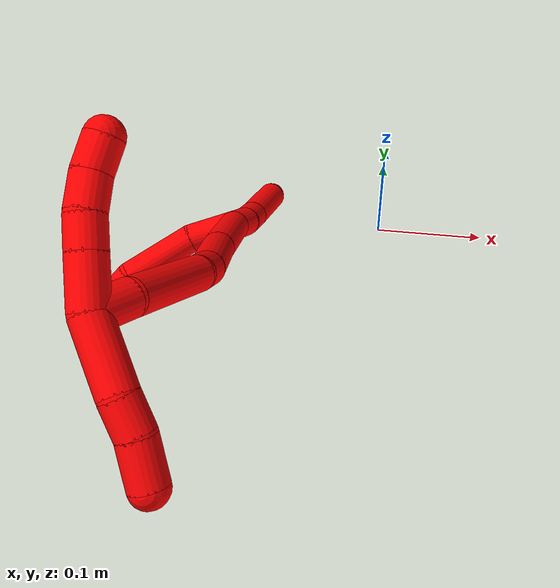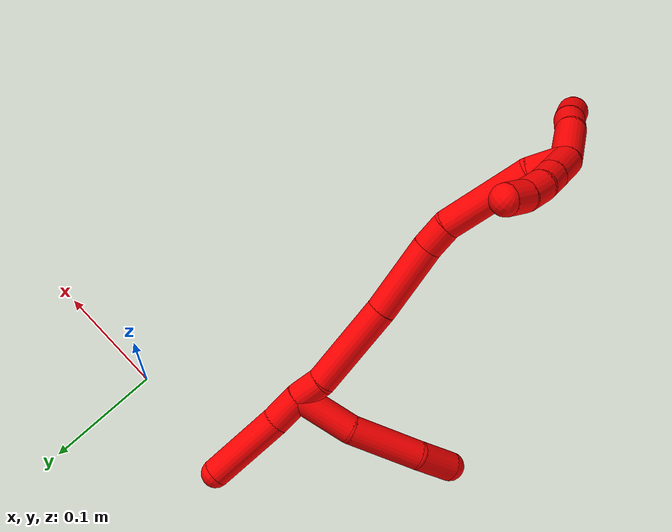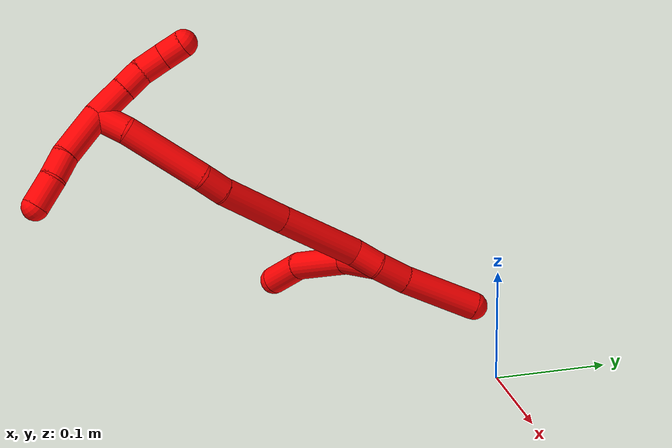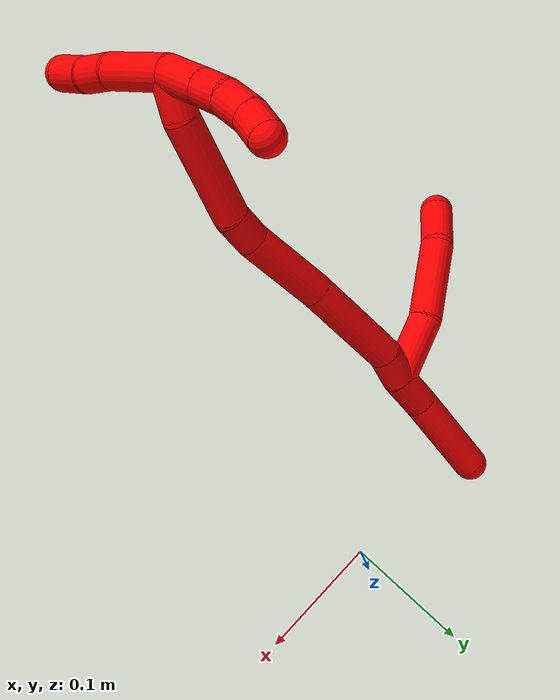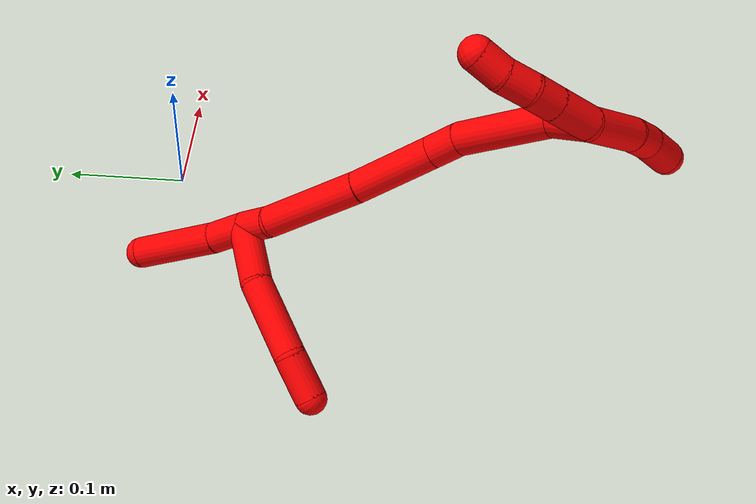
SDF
<sdf version="1.7">
 <world name="default">
  <model name="photoneo_s_sensor">
   <static>1</static>
   <pose>0 0 2 1.57079 1.57079 3.14159</pose>
   <link name="link">
    <inertial><mass>0.1</mass></inertial>
    <sensor name="sensor" type="depth">
     <update_rate>30</update_rate>
     <camera>
      <horizontal_fov>1.22</horizontal_fov>
      <image><width>1920</width><height>1200</height><format>B8G8R8</format></image>
      <clip><near>0.1</near><far>4</far></clip>
      <depth_camera><output>points</output></depth_camera>
     </camera>
     <plugin name="camera_plugin" filename="libgazebo_ros_depth_camera.so">
      <baseline>0.2</baseline>
      <alwaysOn>1</alwaysOn>
      <updateRate>0.0</updateRate>
      <cameraName>camera_ir</cameraName>
      <imageTopicName>/camera/color/image_raw</imageTopicName>
      <cameraInfoTopicName>/camera/color/camera_info</cameraInfoTopicName>
      <depthImageTopicName>/camera/depth/image_raw</depthImageTopicName>
      <depthImageCameraInfoTopicName>/camera/depth/camera_info</depthImageCameraInfoTopicName>
      <pointCloudTopicName>/camera/depth/points</pointCloudTopicName>
      <frameName>fr_optical</frameName>
      <pointCloudCutoff>0.1</pointCloudCutoff>
      <pointCloudCutoffMax>2.0</pointCloudCutoffMax>
      <distortionK1>0</distortionK1>
      <distortionK2>0</distortionK2>
      <distortionK3>0</distortionK3>
      <distortionT1>0</distortionT1>
      <distortionT2>0</distortionT2>
      <CxPrime>0</CxPrime>
      <Cx>0</Cx>
      <Cy>0</Cy>
      <focalLength>0</focalLength>
      <hackBaseline>0</hackBaseline>
     </plugin>
    </sensor>
   </link>
  </model>
  <model name="bin">
   <static>1</static>
   <link name="bottom">
    <collision name="collision-bottom">
     <pose>0 0 -0.01 0 -0 0</pose>
     <geometry><box><size>0.8 0.6 0.02</size></box></geometry>
     <surface>
      <friction><ode><mu>100</mu><mu2>100</mu2></ode></friction>
      <contact><collide_bitmask>65535</collide_bitmask></contact>
     </surface>
    </collision>
   </link>
   <link name="west_wall">
    <collision name="collision-west_wall">
     <pose>-0.41 0 0.1 0 -0 0</pose>
     <geometry><box><size>0.02 0.6 0.2</size></box></geometry>
     <surface>
      <friction><ode><mu>100</mu><mu2>100</mu2></ode></friction>
      <contact><collide_bitmask>65535</collide_bitmask></contact>
     </surface>
    </collision>
   </link>
   <link name="east_wall">
    <collision name="collision-east_wall">
     <pose>0.41 0 0.1 0 -0 0</pose>
     <geometry><box><size>0.02 0.6 0.2</size></box></geometry>
     <surface>
      <friction><ode><mu>100</mu><mu2>100</mu2></ode></friction>
      <contact><collide_bitmask>65535</collide_bitmask></contact>
     </surface>
    </collision>
   </link>
   <link name="south_wall">
    <collision name="collision-south_wall">
     <pose>0 -0.31 0.1 0 -0 0</pose>
     <geometry><box><size>0.8 0.02 0.2</size></box></geometry>
     <surface>
      <friction><ode><mu>100</mu><mu2>100</mu2></ode></friction>
      <contact><collide_bitmask>65535</collide_bitmask></contact>
     </surface>
    </collision>
   </link>
   <link name="north_wall">
    <collision name="collision-north_wall">
     <pose>0 0.31 0.1 0 -0 0</pose>
     <geometry><box><size>0.8 0.02 0.2</size></box></geometry>
     <surface>
      <friction><ode><mu>100</mu><mu2>100</mu2></ode></friction>
      <contact><collide_bitmask>65535</collide_bitmask></contact>
     </surface>
    </collision>
   </link>
  </model>
  <model name="2">
   <static>0</static>
   <link name="2">
    <collision name="collision-cylinder-e_1_2_8">
     <pose>-0.019446 0.015997 0.002731 -1.40171 -0.875347 0.752079</pose>
     <geometry><cylinder><radius>0.0125</radius><length>0.050657</length></cylinder></geometry>
     <surface>
      <friction><ode><mu>1.16</mu><mu2>1.16</mu2><slip1>0</slip1><slip2>0</slip2></ode></friction>
      <contact><ode><kp>1e+06</kp><kd>1</kd><max_vel>0</max_vel><min_depth>0.001</min_depth></ode></contact>
     </surface>
    </collision>
    <visual name="visual-cylinder-e_1_2_8">
     <pose>-0.019446 0.015997 0.002731 -1.40171 -0.875347 0.752079</pose>
     <geometry><cylinder><radius>0.0125</radius><length>0.050657</length></cylinder></geometry>
     <material><ambient>1 0 0 1</ambient></material>
    </visual>
    <collision name="collision-cylinder-e_2_8_9">
     <pose>-0.067448 0.045038 0.009853 -1.24606 -1.12168 0.847872</pose>
     <geometry><cylinder><radius>0.0125</radius><length>0.063398</length></cylinder></geometry>
     <surface>
      <friction><ode><mu>1.16</mu><mu2>1.16</mu2><slip1>0</slip1><slip2>0</slip2></ode></friction>
      <contact><ode><kp>1e+06</kp><kd>1</kd><max_vel>0</max_vel><min_depth>0.001</min_depth></ode></contact>
     </surface>
    </collision>
    <visual name="visual-cylinder-e_2_8_9">
     <pose>-0.067448 0.045038 0.009853 -1.24606 -1.12168 0.847872</pose>
     <geometry><cylinder><radius>0.0125</radius><length>0.063398</length></cylinder></geometry>
     <material><ambient>1 0 0 1</ambient></material>
    </visual>
    <collision name="collision-cylinder-e_3_9_6">
     <pose>-0.113618 0.061517 0.013278 -1.8449 -1.37092 1.6471</pose>
     <geometry><cylinder><radius>0.0125</radius><length>0.035945</length></cylinder></geometry>
     <surface>
      <friction><ode><mu>1.16</mu><mu2>1.16</mu2><slip1>0</slip1><slip2>0</slip2></ode></friction>
      <contact><ode><kp>1e+06</kp><kd>1</kd><max_vel>0</max_vel><min_depth>0.001</min_depth></ode></contact>
     </surface>
    </collision>
    <visual name="visual-cylinder-e_3_9_6">
     <pose>-0.113618 0.061517 0.013278 -1.8449 -1.37092 1.6471</pose>
     <geometry><cylinder><radius>0.0125</radius><length>0.035945</length></cylinder></geometry>
     <material><ambient>1 0 0 1</ambient></material>
    </visual>
    <collision name="collision-cylinder-e_1_2_10">
     <pose>0.003432 0.002529 -0.014256 -2.96601 0.232712 -1.85071</pose>
     <geometry><cylinder><radius>0.0125</radius><length>0.029759</length></cylinder></geometry>
     <surface>
      <friction><ode><mu>1.16</mu><mu2>1.16</mu2><slip1>0</slip1><slip2>0</slip2></ode></friction>
      <contact><ode><kp>1e+06</kp><kd>1</kd><max_vel>0</max_vel><min_depth>0.001</min_depth></ode></contact>
     </surface>
    </collision>
    <visual name="visual-cylinder-e_1_2_10">
     <pose>0.003432 0.002529 -0.014256 -2.96601 0.232712 -1.85071</pose>
     <geometry><cylinder><radius>0.0125</radius><length>0.029759</length></cylinder></geometry>
     <material><ambient>1 0 0 1</ambient></material>
    </visual>
    <collision name="collision-cylinder-e_2_10_5">
     <pose>0.018739 0.011012 -0.061023 -2.96048 0.344938 -2.18054</pose>
     <geometry><cylinder><radius>0.0125</radius><length>0.070241</length></cylinder></geometry>
     <surface>
      <friction><ode><mu>1.16</mu><mu2>1.16</mu2><slip1>0</slip1><slip2>0</slip2></ode></friction>
      <contact><ode><kp>1e+06</kp><kd>1</kd><max_vel>0</max_vel><min_depth>0.001</min_depth></ode></contact>
     </surface>
    </collision>
    <visual name="visual-cylinder-e_2_10_5">
     <pose>0.018739 0.011012 -0.061023 -2.96048 0.344938 -2.18054</pose>
     <geometry><cylinder><radius>0.0125</radius><length>0.070241</length></cylinder></geometry>
     <material><ambient>1 0 0 1</ambient></material>
    </visual>
    <collision name="collision-cylinder-e_1_2_11">
     <pose>-0.00347 -1e-05 0.011956 0.000829 -0.282458 -0.000118</pose>
     <geometry><cylinder><radius>0.0125</radius><length>0.024899</length></cylinder></geometry>
     <surface>
      <friction><ode><mu>1.16</mu><mu2>1.16</mu2><slip1>0</slip1><slip2>0</slip2></ode></friction>
      <contact><ode><kp>1e+06</kp><kd>1</kd><max_vel>0</max_vel><min_depth>0.001</min_depth></ode></contact>
     </surface>
    </collision>
    <visual name="visual-cylinder-e_1_2_11">
     <pose>-0.00347 -1e-05 0.011956 0.000829 -0.282458 -0.000118</pose>
     <geometry><cylinder><radius>0.0125</radius><length>0.024899</length></cylinder></geometry>
     <material><ambient>1 0 0 1</ambient></material>
    </visual>
    <collision name="collision-cylinder-e_2_11_12">
     <pose>-0.014858 -0.009843 0.061327 0.256765 -0.201906 -0.026152</pose>
     <geometry><cylinder><radius>0.0125</radius><length>0.07897</length></cylinder></geometry>
     <surface>
      <friction><ode><mu>1.16</mu><mu2>1.16</mu2><slip1>0</slip1><slip2>0</slip2></ode></friction>
      <contact><ode><kp>1e+06</kp><kd>1</kd><max_vel>0</max_vel><min_depth>0.001</min_depth></ode></contact>
     </surface>
    </collision>
    <visual name="visual-cylinder-e_2_11_12">
     <pose>-0.014858 -0.009843 0.061327 0.256765 -0.201906 -0.026152</pose>
     <geometry><cylinder><radius>0.0125</radius><length>0.07897</length></cylinder></geometry>
     <material><ambient>1 0 0 1</ambient></material>
    </visual>
    <collision name="collision-cylinder-e_3_12_13">
     <pose>-0.027559 -0.028936 0.129361 0.293931 -0.148391 -0.022006</pose>
     <geometry><cylinder><radius>0.0125</radius><length>0.064695</length></cylinder></geometry>
     <surface>
      <friction><ode><mu>1.16</mu><mu2>1.16</mu2><slip1>0</slip1><slip2>0</slip2></ode></friction>
      <contact><ode><kp>1e+06</kp><kd>1</kd><max_vel>0</max_vel><min_depth>0.001</min_depth></ode></contact>
     </surface>
    </collision>
    <visual name="visual-cylinder-e_3_12_13">
     <pose>-0.027559 -0.028936 0.129361 0.293931 -0.148391 -0.022006</pose>
     <geometry><cylinder><radius>0.0125</radius><length>0.064695</length></cylinder></geometry>
     <material><ambient>1 0 0 1</ambient></material>
    </visual>
    <collision name="collision-cylinder-e_4_13_14">
     <pose>-0.033833 -0.039854 0.172035 0.136049 -0.122028 -0.008324</pose>
     <geometry><cylinder><radius>0.0125</radius><length>0.024515</length></cylinder></geometry>
     <surface>
      <friction><ode><mu>1.16</mu><mu2>1.16</mu2><slip1>0</slip1><slip2>0</slip2></ode></friction>
      <contact><ode><kp>1e+06</kp><kd>1</kd><max_vel>0</max_vel><min_depth>0.001</min_depth></ode></contact>
     </surface>
    </collision>
    <visual name="visual-cylinder-e_4_13_14">
     <pose>-0.033833 -0.039854 0.172035 0.136049 -0.122028 -0.008324</pose>
     <geometry><cylinder><radius>0.0125</radius><length>0.024515</length></cylinder></geometry>
     <material><ambient>1 0 0 1</ambient></material>
    </visual>
    <collision name="collision-cylinder-e_5_14_15">
     <pose>-0.046612 -0.039115 0.220978 -0.064684 -0.296331 0.009658</pose>
     <geometry><cylinder><radius>0.0125</radius><length>0.077302</length></cylinder></geometry>
     <surface>
      <friction><ode><mu>1.16</mu><mu2>1.16</mu2><slip1>0</slip1><slip2>0</slip2></ode></friction>
      <contact><ode><kp>1e+06</kp><kd>1</kd><max_vel>0</max_vel><min_depth>0.001</min_depth></ode></contact>
     </surface>
    </collision>
    <visual name="visual-cylinder-e_5_14_15">
     <pose>-0.046612 -0.039115 0.220978 -0.064684 -0.296331 0.009658</pose>
     <geometry><cylinder><radius>0.0125</radius><length>0.077302</length></cylinder></geometry>
     <material><ambient>1 0 0 1</ambient></material>
    </visual>
    <collision name="collision-cylinder-e_6_15_1">
     <pose>-0.065258 -0.033693 0.270356 -0.238202 -0.520048 0.063653</pose>
     <geometry><cylinder><radius>0.0125</radius><length>0.029619</length></cylinder></geometry>
     <surface>
      <friction><ode><mu>1.16</mu><mu2>1.16</mu2><slip1>0</slip1><slip2>0</slip2></ode></friction>
      <contact><ode><kp>1e+06</kp><kd>1</kd><max_vel>0</max_vel><min_depth>0.001</min_depth></ode></contact>
     </surface>
    </collision>
    <visual name="visual-cylinder-e_6_15_1">
     <pose>-0.065258 -0.033693 0.270356 -0.238202 -0.520048 0.063653</pose>
     <geometry><cylinder><radius>0.0125</radius><length>0.029619</length></cylinder></geometry>
     <material><ambient>1 0 0 1</ambient></material>
    </visual>
    <collision name="collision-cylinder-e_1_1_16">
     <pose>-0.05949 -0.020318 0.28198 -1.65426 0.901785 -0.969011</pose>
     <geometry><cylinder><radius>0.0125</radius><length>0.033469</length></cylinder></geometry>
     <surface>
      <friction><ode><mu>1.16</mu><mu2>1.16</mu2><slip1>0</slip1><slip2>0</slip2></ode></friction>
      <contact><ode><kp>1e+06</kp><kd>1</kd><max_vel>0</max_vel><min_depth>0.001</min_depth></ode></contact>
     </surface>
    </collision>
    <visual name="visual-cylinder-e_1_1_16">
     <pose>-0.05949 -0.020318 0.28198 -1.65426 0.901785 -0.969011</pose>
     <geometry><cylinder><radius>0.0125</radius><length>0.033469</length></cylinder></geometry>
     <material><ambient>1 0 0 1</ambient></material>
    </visual>
    <collision name="collision-cylinder-e_2_16_17">
     <pose>-0.037876 -0.003414 0.280517 -1.66165 0.910691 -0.984531</pose>
     <geometry><cylinder><radius>0.0125</radius><length>0.021487</length></cylinder></geometry>
     <surface>
      <friction><ode><mu>1.16</mu><mu2>1.16</mu2><slip1>0</slip1><slip2>0</slip2></ode></friction>
      <contact><ode><kp>1e+06</kp><kd>1</kd><max_vel>0</max_vel><min_depth>0.001</min_depth></ode></contact>
     </surface>
    </collision>
    <visual name="visual-cylinder-e_2_16_17">
     <pose>-0.037876 -0.003414 0.280517 -1.66165 0.910691 -0.984531</pose>
     <geometry><cylinder><radius>0.0125</radius><length>0.021487</length></cylinder></geometry>
     <material><ambient>1 0 0 1</ambient></material>
    </visual>
    <collision name="collision-cylinder-e_3_17_18">
     <pose>-0.019563 0.00882 0.277678 -1.94699 1.0152 -1.37093</pose>
     <geometry><cylinder><radius>0.0125</radius><length>0.023133</length></cylinder></geometry>
     <surface>
      <friction><ode><mu>1.16</mu><mu2>1.16</mu2><slip1>0</slip1><slip2>0</slip2></ode></friction>
      <contact><ode><kp>1e+06</kp><kd>1</kd><max_vel>0</max_vel><min_depth>0.001</min_depth></ode></contact>
     </surface>
    </collision>
    <visual name="visual-cylinder-e_3_17_18">
     <pose>-0.019563 0.00882 0.277678 -1.94699 1.0152 -1.37093</pose>
     <geometry><cylinder><radius>0.0125</radius><length>0.023133</length></cylinder></geometry>
     <material><ambient>1 0 0 1</ambient></material>
    </visual>
    <collision name="collision-cylinder-e_4_18_4">
     <pose>0.000634 0.017732 0.274017 -1.984 1.24228 -1.66158</pose>
     <geometry><cylinder><radius>0.0125</radius><length>0.021911</length></cylinder></geometry>
     <surface>
      <friction><ode><mu>1.16</mu><mu2>1.16</mu2><slip1>0</slip1><slip2>0</slip2></ode></friction>
      <contact><ode><kp>1e+06</kp><kd>1</kd><max_vel>0</max_vel><min_depth>0.001</min_depth></ode></contact>
     </surface>
    </collision>
    <visual name="visual-cylinder-e_4_18_4">
     <pose>0.000634 0.017732 0.274017 -1.984 1.24228 -1.66158</pose>
     <geometry><cylinder><radius>0.0125</radius><length>0.021911</length></cylinder></geometry>
     <material><ambient>1 0 0 1</ambient></material>
    </visual>
    <collision name="collision-cylinder-e_1_1_19">
     <pose>-0.085943 -0.050097 0.283487 1.53781 -0.600745 -0.582349</pose>
     <geometry><cylinder><radius>0.0125</radius><length>0.04715</length></cylinder></geometry>
     <surface>
      <friction><ode><mu>1.16</mu><mu2>1.16</mu2><slip1>0</slip1><slip2>0</slip2></ode></friction>
      <contact><ode><kp>1e+06</kp><kd>1</kd><max_vel>0</max_vel><min_depth>0.001</min_depth></ode></contact>
     </surface>
    </collision>
    <visual name="visual-cylinder-e_1_1_19">
     <pose>-0.085943 -0.050097 0.283487 1.53781 -0.600745 -0.582349</pose>
     <geometry><cylinder><radius>0.0125</radius><length>0.04715</length></cylinder></geometry>
     <material><ambient>1 0 0 1</ambient></material>
    </visual>
    <collision name="collision-cylinder-e_2_19_20">
     <pose>-0.105804 -0.07909 0.28235 1.75478 -0.591954 -0.703325</pose>
     <geometry><cylinder><radius>0.0125</radius><length>0.023425</length></cylinder></geometry>
     <surface>
      <friction><ode><mu>1.16</mu><mu2>1.16</mu2><slip1>0</slip1><slip2>0</slip2></ode></friction>
      <contact><ode><kp>1e+06</kp><kd>1</kd><max_vel>0</max_vel><min_depth>0.001</min_depth></ode></contact>
     </surface>
    </collision>
    <visual name="visual-cylinder-e_2_19_20">
     <pose>-0.105804 -0.07909 0.28235 1.75478 -0.591954 -0.703325</pose>
     <geometry><cylinder><radius>0.0125</radius><length>0.023425</length></cylinder></geometry>
     <material><ambient>1 0 0 1</ambient></material>
    </visual>
    <collision name="collision-cylinder-e_3_20_3">
     <pose>-0.122649 -0.098864 0.278173 1.80138 -0.77642 -0.952871</pose>
     <geometry><cylinder><radius>0.0125</radius><length>0.029425</length></cylinder></geometry>
     <surface>
      <friction><ode><mu>1.16</mu><mu2>1.16</mu2><slip1>0</slip1><slip2>0</slip2></ode></friction>
      <contact><ode><kp>1e+06</kp><kd>1</kd><max_vel>0</max_vel><min_depth>0.001</min_depth></ode></contact>
     </surface>
    </collision>
    <visual name="visual-cylinder-e_3_20_3">
     <pose>-0.122649 -0.098864 0.278173 1.80138 -0.77642 -0.952871</pose>
     <geometry><cylinder><radius>0.0125</radius><length>0.029425</length></cylinder></geometry>
     <material><ambient>1 0 0 1</ambient></material>
    </visual>
    <collision name="collision-sphere-3">
     <pose>-0.132959 -0.109082 0.275774 0 -0 0</pose>
     <geometry><sphere><radius>0.0125</radius></sphere></geometry>
     <surface>
      <friction><ode><mu>1.16</mu><mu2>1.16</mu2><slip1>0</slip1><slip2>0</slip2></ode></friction>
      <contact><ode><kp>1e+06</kp><kd>1</kd><max_vel>0</max_vel><min_depth>0.001</min_depth></ode></contact>
     </surface>
    </collision>
    <visual name="visual-sphere-3">
     <pose>-0.132959 -0.109082 0.275774 0 -0 0</pose>
     <geometry><sphere><radius>0.0125</radius></sphere></geometry>
     <material><ambient>1 0 0 1</ambient></material>
    </visual>
    <collision name="collision-sphere-20">
     <pose>-0.11234 -0.088645 0.280571 0 -0 0</pose>
     <geometry><sphere><radius>0.0125</radius></sphere></geometry>
     <surface>
      <friction><ode><mu>1.16</mu><mu2>1.16</mu2><slip1>0</slip1><slip2>0</slip2></ode></friction>
      <contact><ode><kp>1e+06</kp><kd>1</kd><max_vel>0</max_vel><min_depth>0.001</min_depth></ode></contact>
     </surface>
    </collision>
    <visual name="visual-sphere-20">
     <pose>-0.11234 -0.088645 0.280571 0 -0 0</pose>
     <geometry><sphere><radius>0.0125</radius></sphere></geometry>
     <material><ambient>1 0 0 1</ambient></material>
    </visual>
    <collision name="collision-sphere-19">
     <pose>-0.099269 -0.069534 0.284128 0 -0 0</pose>
     <geometry><sphere><radius>0.0125</radius></sphere></geometry>
     <surface>
      <friction><ode><mu>1.16</mu><mu2>1.16</mu2><slip1>0</slip1><slip2>0</slip2></ode></friction>
      <contact><ode><kp>1e+06</kp><kd>1</kd><max_vel>0</max_vel><min_depth>0.001</min_depth></ode></contact>
     </surface>
    </collision>
    <visual name="visual-sphere-19">
     <pose>-0.099269 -0.069534 0.284128 0 -0 0</pose>
     <geometry><sphere><radius>0.0125</radius></sphere></geometry>
     <material><ambient>1 0 0 1</ambient></material>
    </visual>
    <collision name="collision-sphere-5">
     <pose>0.030614 0.016965 -0.093534 0 -0 0</pose>
     <geometry><sphere><radius>0.0125</radius></sphere></geometry>
     <surface>
      <friction><ode><mu>1.16</mu><mu2>1.16</mu2><slip1>0</slip1><slip2>0</slip2></ode></friction>
      <contact><ode><kp>1e+06</kp><kd>1</kd><max_vel>0</max_vel><min_depth>0.001</min_depth></ode></contact>
     </surface>
    </collision>
    <visual name="visual-sphere-5">
     <pose>0.030614 0.016965 -0.093534 0 -0 0</pose>
     <geometry><sphere><radius>0.0125</radius></sphere></geometry>
     <material><ambient>1 0 0 1</ambient></material>
    </visual>
    <collision name="collision-sphere-10">
     <pose>0.006863 0.005058 -0.028512 0 -0 0</pose>
     <geometry><sphere><radius>0.0125</radius></sphere></geometry>
     <surface>
      <friction><ode><mu>1.16</mu><mu2>1.16</mu2><slip1>0</slip1><slip2>0</slip2></ode></friction>
      <contact><ode><kp>1e+06</kp><kd>1</kd><max_vel>0</max_vel><min_depth>0.001</min_depth></ode></contact>
     </surface>
    </collision>
    <visual name="visual-sphere-10">
     <pose>0.006863 0.005058 -0.028512 0 -0 0</pose>
     <geometry><sphere><radius>0.0125</radius></sphere></geometry>
     <material><ambient>1 0 0 1</ambient></material>
    </visual>
    <collision name="collision-sphere-6">
     <pose>-0.131233 0.064952 0.012312 0 -0 0</pose>
     <geometry><sphere><radius>0.0125</radius></sphere></geometry>
     <surface>
      <friction><ode><mu>1.16</mu><mu2>1.16</mu2><slip1>0</slip1><slip2>0</slip2></ode></friction>
      <contact><ode><kp>1e+06</kp><kd>1</kd><max_vel>0</max_vel><min_depth>0.001</min_depth></ode></contact>
     </surface>
    </collision>
    <visual name="visual-sphere-6">
     <pose>-0.131233 0.064952 0.012312 0 -0 0</pose>
     <geometry><sphere><radius>0.0125</radius></sphere></geometry>
     <material><ambient>1 0 0 1</ambient></material>
    </visual>
    <collision name="collision-sphere-9">
     <pose>-0.096004 0.058082 0.014244 0 -0 0</pose>
     <geometry><sphere><radius>0.0125</radius></sphere></geometry>
     <surface>
      <friction><ode><mu>1.16</mu><mu2>1.16</mu2><slip1>0</slip1><slip2>0</slip2></ode></friction>
      <contact><ode><kp>1e+06</kp><kd>1</kd><max_vel>0</max_vel><min_depth>0.001</min_depth></ode></contact>
     </surface>
    </collision>
    <visual name="visual-sphere-9">
     <pose>-0.096004 0.058082 0.014244 0 -0 0</pose>
     <geometry><sphere><radius>0.0125</radius></sphere></geometry>
     <material><ambient>1 0 0 1</ambient></material>
    </visual>
    <collision name="collision-sphere-2">
     <geometry><sphere><radius>0.0125</radius></sphere></geometry>
     <surface>
      <friction><ode><mu>1.16</mu><mu2>1.16</mu2><slip1>0</slip1><slip2>0</slip2></ode></friction>
      <contact><ode><kp>1e+06</kp><kd>1</kd><max_vel>0</max_vel><min_depth>0.001</min_depth></ode></contact>
     </surface>
    </collision>
    <visual name="visual-sphere-2">
     <geometry><sphere><radius>0.0125</radius></sphere></geometry>
     <material><ambient>1 0 0 1</ambient></material>
    </visual>
    <collision name="collision-sphere-8">
     <pose>-0.038893 0.031995 0.005462 0 -0 0</pose>
     <geometry><sphere><radius>0.0125</radius></sphere></geometry>
     <surface>
      <friction><ode><mu>1.16</mu><mu2>1.16</mu2><slip1>0</slip1><slip2>0</slip2></ode></friction>
      <contact><ode><kp>1e+06</kp><kd>1</kd><max_vel>0</max_vel><min_depth>0.001</min_depth></ode></contact>
     </surface>
    </collision>
    <visual name="visual-sphere-8">
     <pose>-0.038893 0.031995 0.005462 0 -0 0</pose>
     <geometry><sphere><radius>0.0125</radius></sphere></geometry>
     <material><ambient>1 0 0 1</ambient></material>
    </visual>
    <collision name="collision-sphere-11">
     <pose>-0.00694 -2e-05 0.023913 0 -0 0</pose>
     <geometry><sphere><radius>0.0125</radius></sphere></geometry>
     <surface>
      <friction><ode><mu>1.16</mu><mu2>1.16</mu2><slip1>0</slip1><slip2>0</slip2></ode></friction>
      <contact><ode><kp>1e+06</kp><kd>1</kd><max_vel>0</max_vel><min_depth>0.001</min_depth></ode></contact>
     </surface>
    </collision>
    <visual name="visual-sphere-11">
     <pose>-0.00694 -2e-05 0.023913 0 -0 0</pose>
     <geometry><sphere><radius>0.0125</radius></sphere></geometry>
     <material><ambient>1 0 0 1</ambient></material>
    </visual>
    <collision name="collision-sphere-12">
     <pose>-0.022776 -0.019667 0.098742 0 -0 0</pose>
     <geometry><sphere><radius>0.0125</radius></sphere></geometry>
     <surface>
      <friction><ode><mu>1.16</mu><mu2>1.16</mu2><slip1>0</slip1><slip2>0</slip2></ode></friction>
      <contact><ode><kp>1e+06</kp><kd>1</kd><max_vel>0</max_vel><min_depth>0.001</min_depth></ode></contact>
     </surface>
    </collision>
    <visual name="visual-sphere-12">
     <pose>-0.022776 -0.019667 0.098742 0 -0 0</pose>
     <geometry><sphere><radius>0.0125</radius></sphere></geometry>
     <material><ambient>1 0 0 1</ambient></material>
    </visual>
    <collision name="collision-sphere-13">
     <pose>-0.032341 -0.038204 0.159981 0 -0 0</pose>
     <geometry><sphere><radius>0.0125</radius></sphere></geometry>
     <surface>
      <friction><ode><mu>1.16</mu><mu2>1.16</mu2><slip1>0</slip1><slip2>0</slip2></ode></friction>
      <contact><ode><kp>1e+06</kp><kd>1</kd><max_vel>0</max_vel><min_depth>0.001</min_depth></ode></contact>
     </surface>
    </collision>
    <visual name="visual-sphere-13">
     <pose>-0.032341 -0.038204 0.159981 0 -0 0</pose>
     <geometry><sphere><radius>0.0125</radius></sphere></geometry>
     <material><ambient>1 0 0 1</ambient></material>
    </visual>
    <collision name="collision-sphere-14">
     <pose>-0.035325 -0.041504 0.184089 0 -0 0</pose>
     <geometry><sphere><radius>0.0125</radius></sphere></geometry>
     <surface>
      <friction><ode><mu>1.16</mu><mu2>1.16</mu2><slip1>0</slip1><slip2>0</slip2></ode></friction>
      <contact><ode><kp>1e+06</kp><kd>1</kd><max_vel>0</max_vel><min_depth>0.001</min_depth></ode></contact>
     </surface>
    </collision>
    <visual name="visual-sphere-14">
     <pose>-0.035325 -0.041504 0.184089 0 -0 0</pose>
     <geometry><sphere><radius>0.0125</radius></sphere></geometry>
     <material><ambient>1 0 0 1</ambient></material>
    </visual>
    <collision name="collision-sphere-15">
     <pose>-0.057899 -0.036725 0.257868 0 -0 0</pose>
     <geometry><sphere><radius>0.0125</radius></sphere></geometry>
     <surface>
      <friction><ode><mu>1.16</mu><mu2>1.16</mu2><slip1>0</slip1><slip2>0</slip2></ode></friction>
      <contact><ode><kp>1e+06</kp><kd>1</kd><max_vel>0</max_vel><min_depth>0.001</min_depth></ode></contact>
     </surface>
    </collision>
    <visual name="visual-sphere-15">
     <pose>-0.057899 -0.036725 0.257868 0 -0 0</pose>
     <geometry><sphere><radius>0.0125</radius></sphere></geometry>
     <material><ambient>1 0 0 1</ambient></material>
    </visual>
    <collision name="collision-sphere-1">
     <pose>-0.072617 -0.030661 0.282845 0 -0 0</pose>
     <geometry><sphere><radius>0.0125</radius></sphere></geometry>
     <surface>
      <friction><ode><mu>1.16</mu><mu2>1.16</mu2><slip1>0</slip1><slip2>0</slip2></ode></friction>
      <contact><ode><kp>1e+06</kp><kd>1</kd><max_vel>0</max_vel><min_depth>0.001</min_depth></ode></contact>
     </surface>
    </collision>
    <visual name="visual-sphere-1">
     <pose>-0.072617 -0.030661 0.282845 0 -0 0</pose>
     <geometry><sphere><radius>0.0125</radius></sphere></geometry>
     <material><ambient>1 0 0 1</ambient></material>
    </visual>
    <collision name="collision-sphere-18">
     <pose>-0.009736 0.014495 0.275437 0 -0 0</pose>
     <geometry><sphere><radius>0.0125</radius></sphere></geometry>
     <surface>
      <friction><ode><mu>1.16</mu><mu2>1.16</mu2><slip1>0</slip1><slip2>0</slip2></ode></friction>
      <contact><ode><kp>1e+06</kp><kd>1</kd><max_vel>0</max_vel><min_depth>0.001</min_depth></ode></contact>
     </surface>
    </collision>
    <visual name="visual-sphere-18">
     <pose>-0.009736 0.014495 0.275437 0 -0 0</pose>
     <geometry><sphere><radius>0.0125</radius></sphere></geometry>
     <material><ambient>1 0 0 1</ambient></material>
    </visual>
    <collision name="collision-sphere-16">
     <pose>-0.046363 -0.009975 0.281115 0 -0 0</pose>
     <geometry><sphere><radius>0.0125</radius></sphere></geometry>
     <surface>
      <friction><ode><mu>1.16</mu><mu2>1.16</mu2><slip1>0</slip1><slip2>0</slip2></ode></friction>
      <contact><ode><kp>1e+06</kp><kd>1</kd><max_vel>0</max_vel><min_depth>0.001</min_depth></ode></contact>
     </surface>
    </collision>
    <visual name="visual-sphere-16">
     <pose>-0.046363 -0.009975 0.281115 0 -0 0</pose>
     <geometry><sphere><radius>0.0125</radius></sphere></geometry>
     <material><ambient>1 0 0 1</ambient></material>
    </visual>
    <collision name="collision-sphere-17">
     <pose>-0.02939 0.003146 0.279919 0 -0 0</pose>
     <geometry><sphere><radius>0.0125</radius></sphere></geometry>
     <surface>
      <friction><ode><mu>1.16</mu><mu2>1.16</mu2><slip1>0</slip1><slip2>0</slip2></ode></friction>
      <contact><ode><kp>1e+06</kp><kd>1</kd><max_vel>0</max_vel><min_depth>0.001</min_depth></ode></contact>
     </surface>
    </collision>
    <visual name="visual-sphere-17">
     <pose>-0.02939 0.003146 0.279919 0 -0 0</pose>
     <geometry><sphere><radius>0.0125</radius></sphere></geometry>
     <material><ambient>1 0 0 1</ambient></material>
    </visual>
    <collision name="collision-sphere-4">
     <pose>0.011003 0.020969 0.272598 0 -0 0</pose>
     <geometry><sphere><radius>0.0125</radius></sphere></geometry>
     <surface>
      <friction><ode><mu>1.16</mu><mu2>1.16</mu2><slip1>0</slip1><slip2>0</slip2></ode></friction>
      <contact><ode><kp>1e+06</kp><kd>1</kd><max_vel>0</max_vel><min_depth>0.001</min_depth></ode></contact>
     </surface>
    </collision>
    <visual name="visual-sphere-4">
     <pose>0.011003 0.020969 0.272598 0 -0 0</pose>
     <geometry><sphere><radius>0.0125</radius></sphere></geometry>
     <material><ambient>1 0 0 1</ambient></material>
    </visual>
    <inertial>
     <pose>-0.040958 -0.010943 0.127207 0 -0 0</pose>
     <mass>0.75</mass>
     <inertia><ixx>8.3e-05</ixx><ixy>0</ixy><ixz>0</ixz><iyy>0.000157</iyy><iyz>0</iyz><izz>6.6e-05</izz></inertia>
    </inertial>
   </link>
   <pose>-0.117915 -0.074551 0.067495 0.331169 -0.671488 0.921271</pose>
  </model>
 </world>
</sdf>
